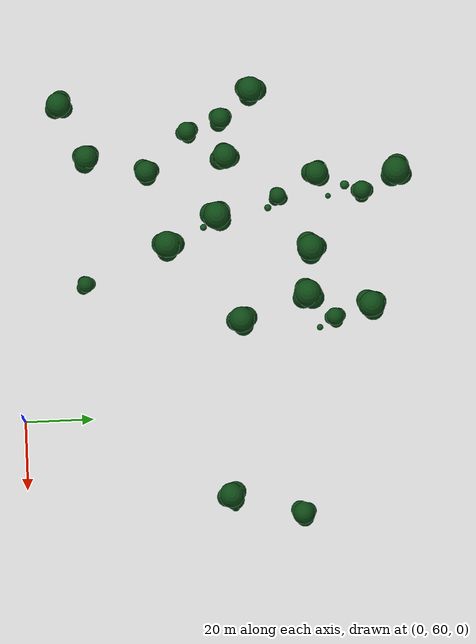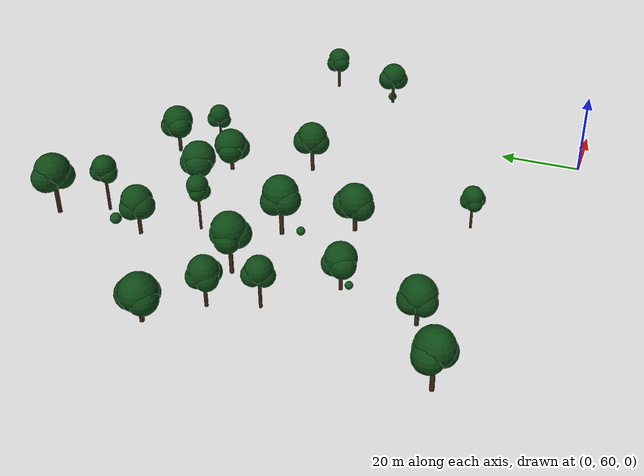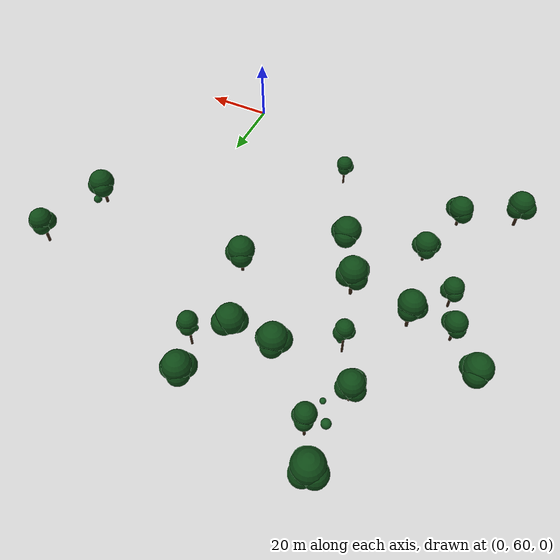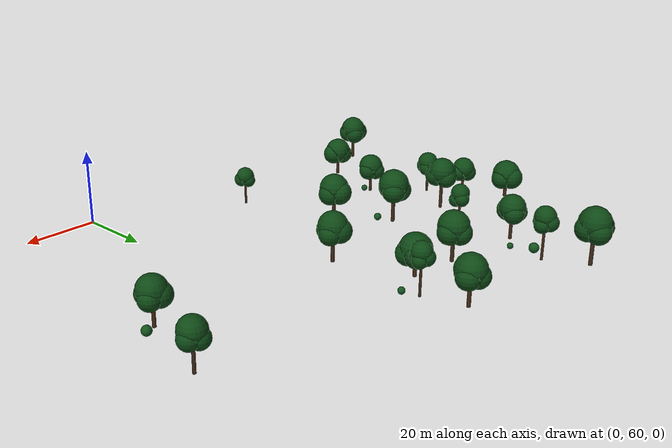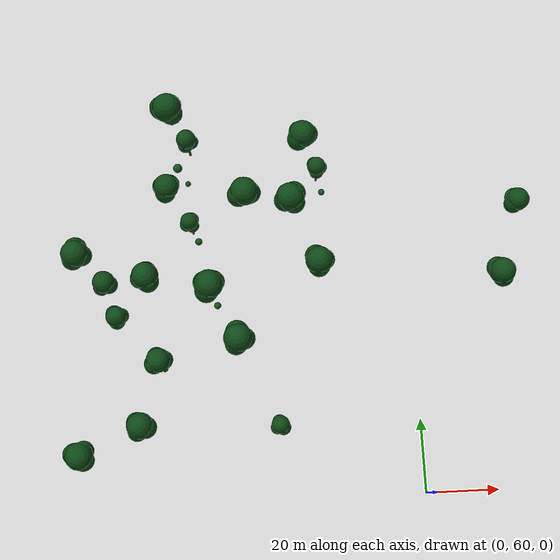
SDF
<sdf version="1.9">
 <world name="forest_monitoring">
  <model name="tree_1">
   <static>true</static>
   <pose>-49.59 103.68 0 0 0 1.43</pose>
   <link name="link">
    <visual name="trunk">
     <pose>0 0 4.39 0 0 0</pose>
     <geometry><cylinder><radius>0.49</radius><length>8.79</length></cylinder></geometry>
     <material>
      <ambient>0.18 0.11 0.06 1</ambient>
      <diffuse>0.24 0.15 0.08 1</diffuse>
      <specular>0.1 0.1 0.1 1</specular>
      <pbr><metal><roughness>0.9</roughness><metalness>0.0</metalness></metal></pbr>
     </material>
    </visual>
    <visual name="canopy_0">
     <pose>0.00 0.00 7.73 0 0 0</pose>
     <geometry><sphere><radius>4.06</radius></sphere></geometry>
     <material>
      <ambient>0.03 0.16 0.05 1</ambient>
      <diffuse>0.05 0.28 0.08 1</diffuse>
      <specular>0.1 0.1 0.1 1</specular>
      <pbr><metal><roughness>1.0</roughness><metalness>0.0</metalness></metal></pbr>
     </material>
    </visual>
    <visual name="canopy_1">
     <pose>1.70 0.49 6.86 0 0 0</pose>
     <geometry><sphere><radius>3.33</radius></sphere></geometry>
     <material>
      <ambient>0.03 0.16 0.05 1</ambient>
      <diffuse>0.05 0.28 0.08 1</diffuse>
      <specular>0.1 0.1 0.1 1</specular>
      <pbr><metal><roughness>1.0</roughness><metalness>0.0</metalness></metal></pbr>
     </material>
    </visual>
    <visual name="canopy_2">
     <pose>-1.54 0.32 6.68 0 0 0</pose>
     <geometry><sphere><radius>3.17</radius></sphere></geometry>
     <material>
      <ambient>0.03 0.16 0.05 1</ambient>
      <diffuse>0.05 0.28 0.08 1</diffuse>
      <specular>0.1 0.1 0.1 1</specular>
      <pbr><metal><roughness>1.0</roughness><metalness>0.0</metalness></metal></pbr>
     </material>
    </visual>
    <visual name="canopy_3">
     <pose>0.16 -1.70 6.50 0 0 0</pose>
     <geometry><sphere><radius>3.08</radius></sphere></geometry>
     <material>
      <ambient>0.03 0.16 0.05 1</ambient>
      <diffuse>0.05 0.28 0.08 1</diffuse>
      <specular>0.1 0.1 0.1 1</specular>
      <pbr><metal><roughness>1.0</roughness><metalness>0.0</metalness></metal></pbr>
     </material>
    </visual>
   </link>
  </model>
  <model name="tree_2">
   <static>true</static>
   <pose>-76.65 80.83 0 0 0 5.70</pose>
   <link name="link">
    <visual name="trunk">
     <pose>0 0 4.15 0 0 0</pose>
     <geometry><cylinder><radius>0.44</radius><length>8.31</length></cylinder></geometry>
     <material>
      <ambient>0.18 0.11 0.06 1</ambient>
      <diffuse>0.24 0.15 0.08 1</diffuse>
      <specular>0.1 0.1 0.1 1</specular>
      <pbr><metal><roughness>0.9</roughness><metalness>0.0</metalness></metal></pbr>
     </material>
    </visual>
    <visual name="canopy_0">
     <pose>0.00 0.00 7.31 0 0 0</pose>
     <geometry><sphere><radius>3.64</radius></sphere></geometry>
     <material>
      <ambient>0.03 0.16 0.05 1</ambient>
      <diffuse>0.05 0.28 0.08 1</diffuse>
      <specular>0.1 0.1 0.1 1</specular>
      <pbr><metal><roughness>1.0</roughness><metalness>0.0</metalness></metal></pbr>
     </material>
    </visual>
    <visual name="canopy_1">
     <pose>1.53 0.44 6.48 0 0 0</pose>
     <geometry><sphere><radius>2.98</radius></sphere></geometry>
     <material>
      <ambient>0.03 0.16 0.05 1</ambient>
      <diffuse>0.05 0.28 0.08 1</diffuse>
      <specular>0.1 0.1 0.1 1</specular>
      <pbr><metal><roughness>1.0</roughness><metalness>0.0</metalness></metal></pbr>
     </material>
    </visual>
    <visual name="canopy_2">
     <pose>-1.38 0.29 6.31 0 0 0</pose>
     <geometry><sphere><radius>2.84</radius></sphere></geometry>
     <material>
      <ambient>0.03 0.16 0.05 1</ambient>
      <diffuse>0.05 0.28 0.08 1</diffuse>
      <specular>0.1 0.1 0.1 1</specular>
      <pbr><metal><roughness>1.0</roughness><metalness>0.0</metalness></metal></pbr>
     </material>
    </visual>
    <visual name="canopy_3">
     <pose>0.15 -1.53 6.15 0 0 0</pose>
     <geometry><sphere><radius>2.76</radius></sphere></geometry>
     <material>
      <ambient>0.03 0.16 0.05 1</ambient>
      <diffuse>0.05 0.28 0.08 1</diffuse>
      <specular>0.1 0.1 0.1 1</specular>
      <pbr><metal><roughness>1.0</roughness><metalness>0.0</metalness></metal></pbr>
     </material>
    </visual>
   </link>
  </model>
  <model name="tree_3">
   <static>true</static>
   <pose>-57.14 118.49 0 0 0 4.03</pose>
   <link name="link">
    <visual name="trunk">
     <pose>0 0 6.04 0 0 0</pose>
     <geometry><cylinder><radius>0.49</radius><length>12.07</length></cylinder></geometry>
     <material>
      <ambient>0.18 0.11 0.06 1</ambient>
      <diffuse>0.24 0.15 0.08 1</diffuse>
      <specular>0.1 0.1 0.1 1</specular>
      <pbr><metal><roughness>0.9</roughness><metalness>0.0</metalness></metal></pbr>
     </material>
    </visual>
    <visual name="canopy_0">
     <pose>0.00 0.00 10.62 0 0 0</pose>
     <geometry><sphere><radius>4.08</radius></sphere></geometry>
     <material>
      <ambient>0.03 0.16 0.05 1</ambient>
      <diffuse>0.05 0.28 0.08 1</diffuse>
      <specular>0.1 0.1 0.1 1</specular>
      <pbr><metal><roughness>1.0</roughness><metalness>0.0</metalness></metal></pbr>
     </material>
    </visual>
    <visual name="canopy_1">
     <pose>1.71 0.49 9.42 0 0 0</pose>
     <geometry><sphere><radius>3.34</radius></sphere></geometry>
     <material>
      <ambient>0.03 0.16 0.05 1</ambient>
      <diffuse>0.05 0.28 0.08 1</diffuse>
      <specular>0.1 0.1 0.1 1</specular>
      <pbr><metal><roughness>1.0</roughness><metalness>0.0</metalness></metal></pbr>
     </material>
    </visual>
    <visual name="canopy_2">
     <pose>-1.55 0.33 9.18 0 0 0</pose>
     <geometry><sphere><radius>3.18</radius></sphere></geometry>
     <material>
      <ambient>0.03 0.16 0.05 1</ambient>
      <diffuse>0.05 0.28 0.08 1</diffuse>
      <specular>0.1 0.1 0.1 1</specular>
      <pbr><metal><roughness>1.0</roughness><metalness>0.0</metalness></metal></pbr>
     </material>
    </visual>
    <visual name="canopy_3">
     <pose>0.16 -1.71 8.93 0 0 0</pose>
     <geometry><sphere><radius>3.10</radius></sphere></geometry>
     <material>
      <ambient>0.03 0.16 0.05 1</ambient>
      <diffuse>0.05 0.28 0.08 1</diffuse>
      <specular>0.1 0.1 0.1 1</specular>
      <pbr><metal><roughness>1.0</roughness><metalness>0.0</metalness></metal></pbr>
     </material>
    </visual>
   </link>
  </model>
  <model name="tree_4">
   <static>true</static>
   <pose>-92.36 73.34 0 0 0 2.49</pose>
   <link name="link">
    <visual name="trunk">
     <pose>0 0 5.38 0 0 0</pose>
     <geometry><cylinder><radius>0.45</radius><length>10.75</length></cylinder></geometry>
     <material>
      <ambient>0.18 0.11 0.06 1</ambient>
      <diffuse>0.24 0.15 0.08 1</diffuse>
      <specular>0.1 0.1 0.1 1</specular>
      <pbr><metal><roughness>0.9</roughness><metalness>0.0</metalness></metal></pbr>
     </material>
    </visual>
    <visual name="canopy_0">
     <pose>0.00 0.00 9.46 0 0 0</pose>
     <geometry><sphere><radius>3.71</radius></sphere></geometry>
     <material>
      <ambient>0.03 0.16 0.05 1</ambient>
      <diffuse>0.05 0.28 0.08 1</diffuse>
      <specular>0.1 0.1 0.1 1</specular>
      <pbr><metal><roughness>1.0</roughness><metalness>0.0</metalness></metal></pbr>
     </material>
    </visual>
    <visual name="canopy_1">
     <pose>1.56 0.45 8.39 0 0 0</pose>
     <geometry><sphere><radius>3.04</radius></sphere></geometry>
     <material>
      <ambient>0.03 0.16 0.05 1</ambient>
      <diffuse>0.05 0.28 0.08 1</diffuse>
      <specular>0.1 0.1 0.1 1</specular>
      <pbr><metal><roughness>1.0</roughness><metalness>0.0</metalness></metal></pbr>
     </material>
    </visual>
    <visual name="canopy_2">
     <pose>-1.41 0.30 8.17 0 0 0</pose>
     <geometry><sphere><radius>2.89</radius></sphere></geometry>
     <material>
      <ambient>0.03 0.16 0.05 1</ambient>
      <diffuse>0.05 0.28 0.08 1</diffuse>
      <specular>0.1 0.1 0.1 1</specular>
      <pbr><metal><roughness>1.0</roughness><metalness>0.0</metalness></metal></pbr>
     </material>
    </visual>
    <visual name="canopy_3">
     <pose>0.15 -1.56 7.96 0 0 0</pose>
     <geometry><sphere><radius>2.82</radius></sphere></geometry>
     <material>
      <ambient>0.03 0.16 0.05 1</ambient>
      <diffuse>0.05 0.28 0.08 1</diffuse>
      <specular>0.1 0.1 0.1 1</specular>
      <pbr><metal><roughness>1.0</roughness><metalness>0.0</metalness></metal></pbr>
     </material>
    </visual>
   </link>
  </model>
  <model name="tree_6">
   <static>true</static>
   <pose>-71.57 98.38 0 0 0 3.49</pose>
   <link name="link">
    <visual name="trunk">
     <pose>0 0 4.31 0 0 0</pose>
     <geometry><cylinder><radius>0.41</radius><length>8.62</length></cylinder></geometry>
     <material>
      <ambient>0.18 0.11 0.06 1</ambient>
      <diffuse>0.24 0.15 0.08 1</diffuse>
      <specular>0.1 0.1 0.1 1</specular>
      <pbr><metal><roughness>0.9</roughness><metalness>0.0</metalness></metal></pbr>
     </material>
    </visual>
    <visual name="canopy_0">
     <pose>0.00 0.00 7.59 0 0 0</pose>
     <geometry><sphere><radius>3.40</radius></sphere></geometry>
     <material>
      <ambient>0.03 0.16 0.05 1</ambient>
      <diffuse>0.05 0.28 0.08 1</diffuse>
      <specular>0.1 0.1 0.1 1</specular>
      <pbr><metal><roughness>1.0</roughness><metalness>0.0</metalness></metal></pbr>
     </material>
    </visual>
    <visual name="canopy_1">
     <pose>1.43 0.41 6.73 0 0 0</pose>
     <geometry><sphere><radius>2.78</radius></sphere></geometry>
     <material>
      <ambient>0.03 0.16 0.05 1</ambient>
      <diffuse>0.05 0.28 0.08 1</diffuse>
      <specular>0.1 0.1 0.1 1</specular>
      <pbr><metal><roughness>1.0</roughness><metalness>0.0</metalness></metal></pbr>
     </material>
    </visual>
    <visual name="canopy_2">
     <pose>-1.29 0.27 6.55 0 0 0</pose>
     <geometry><sphere><radius>2.65</radius></sphere></geometry>
     <material>
      <ambient>0.03 0.16 0.05 1</ambient>
      <diffuse>0.05 0.28 0.08 1</diffuse>
      <specular>0.1 0.1 0.1 1</specular>
      <pbr><metal><roughness>1.0</roughness><metalness>0.0</metalness></metal></pbr>
     </material>
    </visual>
    <visual name="canopy_3">
     <pose>0.14 -1.43 6.38 0 0 0</pose>
     <geometry><sphere><radius>2.58</radius></sphere></geometry>
     <material>
      <ambient>0.03 0.16 0.05 1</ambient>
      <diffuse>0.05 0.28 0.08 1</diffuse>
      <specular>0.1 0.1 0.1 1</specular>
      <pbr><metal><roughness>1.0</roughness><metalness>0.0</metalness></metal></pbr>
     </material>
    </visual>
   </link>
  </model>
  <model name="tree_7">
   <static>true</static>
   <pose>-74.68 121.67 0 0 0 4.86</pose>
   <link name="link">
    <visual name="trunk">
     <pose>0 0 6.09 0 0 0</pose>
     <geometry><cylinder><radius>0.45</radius><length>12.18</length></cylinder></geometry>
     <material>
      <ambient>0.18 0.11 0.06 1</ambient>
      <diffuse>0.24 0.15 0.08 1</diffuse>
      <specular>0.1 0.1 0.1 1</specular>
      <pbr><metal><roughness>0.9</roughness><metalness>0.0</metalness></metal></pbr>
     </material>
    </visual>
    <visual name="canopy_0">
     <pose>0.00 0.00 10.72 0 0 0</pose>
     <geometry><sphere><radius>3.74</radius></sphere></geometry>
     <material>
      <ambient>0.03 0.16 0.05 1</ambient>
      <diffuse>0.05 0.28 0.08 1</diffuse>
      <specular>0.1 0.1 0.1 1</specular>
      <pbr><metal><roughness>1.0</roughness><metalness>0.0</metalness></metal></pbr>
     </material>
    </visual>
    <visual name="canopy_1">
     <pose>1.57 0.45 9.50 0 0 0</pose>
     <geometry><sphere><radius>3.06</radius></sphere></geometry>
     <material>
      <ambient>0.03 0.16 0.05 1</ambient>
      <diffuse>0.05 0.28 0.08 1</diffuse>
      <specular>0.1 0.1 0.1 1</specular>
      <pbr><metal><roughness>1.0</roughness><metalness>0.0</metalness></metal></pbr>
     </material>
    </visual>
    <visual name="canopy_2">
     <pose>-1.42 0.30 9.26 0 0 0</pose>
     <geometry><sphere><radius>2.91</radius></sphere></geometry>
     <material>
      <ambient>0.03 0.16 0.05 1</ambient>
      <diffuse>0.05 0.28 0.08 1</diffuse>
      <specular>0.1 0.1 0.1 1</specular>
      <pbr><metal><roughness>1.0</roughness><metalness>0.0</metalness></metal></pbr>
     </material>
    </visual>
    <visual name="canopy_3">
     <pose>0.15 -1.57 9.02 0 0 0</pose>
     <geometry><sphere><radius>2.84</radius></sphere></geometry>
     <material>
      <ambient>0.03 0.16 0.05 1</ambient>
      <diffuse>0.05 0.28 0.08 1</diffuse>
      <specular>0.1 0.1 0.1 1</specular>
      <pbr><metal><roughness>1.0</roughness><metalness>0.0</metalness></metal></pbr>
     </material>
    </visual>
   </link>
  </model>
  <model name="tree_10">
   <static>true</static>
   <pose>-38.74 79.47 0 0 0 5.22</pose>
   <link name="link">
    <visual name="trunk">
     <pose>0 0 4.69 0 0 0</pose>
     <geometry><cylinder><radius>0.29</radius><length>9.37</length></cylinder></geometry>
     <material>
      <ambient>0.18 0.11 0.06 1</ambient>
      <diffuse>0.24 0.15 0.08 1</diffuse>
      <specular>0.1 0.1 0.1 1</specular>
      <pbr><metal><roughness>0.9</roughness><metalness>0.0</metalness></metal></pbr>
     </material>
    </visual>
    <visual name="canopy_0">
     <pose>0.00 0.00 8.25 0 0 0</pose>
     <geometry><sphere><radius>2.45</radius></sphere></geometry>
     <material>
      <ambient>0.03 0.16 0.05 1</ambient>
      <diffuse>0.05 0.28 0.08 1</diffuse>
      <specular>0.1 0.1 0.1 1</specular>
      <pbr><metal><roughness>1.0</roughness><metalness>0.0</metalness></metal></pbr>
     </material>
    </visual>
    <visual name="canopy_1">
     <pose>1.03 0.29 7.31 0 0 0</pose>
     <geometry><sphere><radius>2.01</radius></sphere></geometry>
     <material>
      <ambient>0.03 0.16 0.05 1</ambient>
      <diffuse>0.05 0.28 0.08 1</diffuse>
      <specular>0.1 0.1 0.1 1</specular>
      <pbr><metal><roughness>1.0</roughness><metalness>0.0</metalness></metal></pbr>
     </material>
    </visual>
    <visual name="canopy_2">
     <pose>-0.93 0.20 7.12 0 0 0</pose>
     <geometry><sphere><radius>1.91</radius></sphere></geometry>
     <material>
      <ambient>0.03 0.16 0.05 1</ambient>
      <diffuse>0.05 0.28 0.08 1</diffuse>
      <specular>0.1 0.1 0.1 1</specular>
      <pbr><metal><roughness>1.0</roughness><metalness>0.0</metalness></metal></pbr>
     </material>
    </visual>
    <visual name="canopy_3">
     <pose>0.10 -1.03 6.93 0 0 0</pose>
     <geometry><sphere><radius>1.86</radius></sphere></geometry>
     <material>
      <ambient>0.03 0.16 0.05 1</ambient>
      <diffuse>0.05 0.28 0.08 1</diffuse>
      <specular>0.1 0.1 0.1 1</specular>
      <pbr><metal><roughness>1.0</roughness><metalness>0.0</metalness></metal></pbr>
     </material>
    </visual>
   </link>
  </model>
  <model name="tree_12">
   <static>true</static>
   <pose>-68.85 148.26 0 0 0 4.20</pose>
   <link name="link">
    <visual name="trunk">
     <pose>0 0 4.89 0 0 0</pose>
     <geometry><cylinder><radius>0.43</radius><length>9.79</length></cylinder></geometry>
     <material>
      <ambient>0.18 0.11 0.06 1</ambient>
      <diffuse>0.24 0.15 0.08 1</diffuse>
      <specular>0.1 0.1 0.1 1</specular>
      <pbr><metal><roughness>0.9</roughness><metalness>0.0</metalness></metal></pbr>
     </material>
    </visual>
    <visual name="canopy_0">
     <pose>0.00 0.00 8.61 0 0 0</pose>
     <geometry><sphere><radius>3.56</radius></sphere></geometry>
     <material>
      <ambient>0.03 0.16 0.05 1</ambient>
      <diffuse>0.05 0.28 0.08 1</diffuse>
      <specular>0.1 0.1 0.1 1</specular>
      <pbr><metal><roughness>1.0</roughness><metalness>0.0</metalness></metal></pbr>
     </material>
    </visual>
    <visual name="canopy_1">
     <pose>1.50 0.43 7.64 0 0 0</pose>
     <geometry><sphere><radius>2.92</radius></sphere></geometry>
     <material>
      <ambient>0.03 0.16 0.05 1</ambient>
      <diffuse>0.05 0.28 0.08 1</diffuse>
      <specular>0.1 0.1 0.1 1</specular>
      <pbr><metal><roughness>1.0</roughness><metalness>0.0</metalness></metal></pbr>
     </material>
    </visual>
    <visual name="canopy_2">
     <pose>-1.35 0.29 7.44 0 0 0</pose>
     <geometry><sphere><radius>2.78</radius></sphere></geometry>
     <material>
      <ambient>0.03 0.16 0.05 1</ambient>
      <diffuse>0.05 0.28 0.08 1</diffuse>
      <specular>0.1 0.1 0.1 1</specular>
      <pbr><metal><roughness>1.0</roughness><metalness>0.0</metalness></metal></pbr>
     </material>
    </visual>
    <visual name="canopy_3">
     <pose>0.14 -1.50 7.24 0 0 0</pose>
     <geometry><sphere><radius>2.71</radius></sphere></geometry>
     <material>
      <ambient>0.03 0.16 0.05 1</ambient>
      <diffuse>0.05 0.28 0.08 1</diffuse>
      <specular>0.1 0.1 0.1 1</specular>
      <pbr><metal><roughness>1.0</roughness><metalness>0.0</metalness></metal></pbr>
     </material>
    </visual>
   </link>
  </model>
  <model name="tree_13">
   <static>true</static>
   <pose>-68.14 171.48 0 0 0 2.55</pose>
   <link name="link">
    <visual name="trunk">
     <pose>0 0 6.32 0 0 0</pose>
     <geometry><cylinder><radius>0.50</radius><length>12.63</length></cylinder></geometry>
     <material>
      <ambient>0.18 0.11 0.06 1</ambient>
      <diffuse>0.24 0.15 0.08 1</diffuse>
      <specular>0.1 0.1 0.1 1</specular>
      <pbr><metal><roughness>0.9</roughness><metalness>0.0</metalness></metal></pbr>
     </material>
    </visual>
    <visual name="canopy_0">
     <pose>0.00 0.00 11.12 0 0 0</pose>
     <geometry><sphere><radius>4.17</radius></sphere></geometry>
     <material>
      <ambient>0.03 0.16 0.05 1</ambient>
      <diffuse>0.05 0.28 0.08 1</diffuse>
      <specular>0.1 0.1 0.1 1</specular>
      <pbr><metal><roughness>1.0</roughness><metalness>0.0</metalness></metal></pbr>
     </material>
    </visual>
    <visual name="canopy_1">
     <pose>1.75 0.50 9.85 0 0 0</pose>
     <geometry><sphere><radius>3.42</radius></sphere></geometry>
     <material>
      <ambient>0.03 0.16 0.05 1</ambient>
      <diffuse>0.05 0.28 0.08 1</diffuse>
      <specular>0.1 0.1 0.1 1</specular>
      <pbr><metal><roughness>1.0</roughness><metalness>0.0</metalness></metal></pbr>
     </material>
    </visual>
    <visual name="canopy_2">
     <pose>-1.58 0.33 9.60 0 0 0</pose>
     <geometry><sphere><radius>3.25</radius></sphere></geometry>
     <material>
      <ambient>0.03 0.16 0.05 1</ambient>
      <diffuse>0.05 0.28 0.08 1</diffuse>
      <specular>0.1 0.1 0.1 1</specular>
      <pbr><metal><roughness>1.0</roughness><metalness>0.0</metalness></metal></pbr>
     </material>
    </visual>
    <visual name="canopy_3">
     <pose>0.17 -1.75 9.35 0 0 0</pose>
     <geometry><sphere><radius>3.17</radius></sphere></geometry>
     <material>
      <ambient>0.03 0.16 0.05 1</ambient>
      <diffuse>0.05 0.28 0.08 1</diffuse>
      <specular>0.1 0.1 0.1 1</specular>
      <pbr><metal><roughness>1.0</roughness><metalness>0.0</metalness></metal></pbr>
     </material>
    </visual>
   </link>
  </model>
  <model name="tree_14">
   <static>true</static>
   <pose>-95.13 129.93 0 0 0 1.29</pose>
   <link name="link">
    <visual name="trunk">
     <pose>0 0 3.83 0 0 0</pose>
     <geometry><cylinder><radius>0.47</radius><length>7.67</length></cylinder></geometry>
     <material>
      <ambient>0.18 0.11 0.06 1</ambient>
      <diffuse>0.24 0.15 0.08 1</diffuse>
      <specular>0.1 0.1 0.1 1</specular>
      <pbr><metal><roughness>0.9</roughness><metalness>0.0</metalness></metal></pbr>
     </material>
    </visual>
    <visual name="canopy_0">
     <pose>0.00 0.00 6.75 0 0 0</pose>
     <geometry><sphere><radius>3.94</radius></sphere></geometry>
     <material>
      <ambient>0.03 0.16 0.05 1</ambient>
      <diffuse>0.05 0.28 0.08 1</diffuse>
      <specular>0.1 0.1 0.1 1</specular>
      <pbr><metal><roughness>1.0</roughness><metalness>0.0</metalness></metal></pbr>
     </material>
    </visual>
    <visual name="canopy_1">
     <pose>1.66 0.47 5.98 0 0 0</pose>
     <geometry><sphere><radius>3.23</radius></sphere></geometry>
     <material>
      <ambient>0.03 0.16 0.05 1</ambient>
      <diffuse>0.05 0.28 0.08 1</diffuse>
      <specular>0.1 0.1 0.1 1</specular>
      <pbr><metal><roughness>1.0</roughness><metalness>0.0</metalness></metal></pbr>
     </material>
    </visual>
    <visual name="canopy_2">
     <pose>-1.50 0.32 5.83 0 0 0</pose>
     <geometry><sphere><radius>3.08</radius></sphere></geometry>
     <material>
      <ambient>0.03 0.16 0.05 1</ambient>
      <diffuse>0.05 0.28 0.08 1</diffuse>
      <specular>0.1 0.1 0.1 1</specular>
      <pbr><metal><roughness>1.0</roughness><metalness>0.0</metalness></metal></pbr>
     </material>
    </visual>
    <visual name="canopy_3">
     <pose>0.16 -1.66 5.67 0 0 0</pose>
     <geometry><sphere><radius>3.00</radius></sphere></geometry>
     <material>
      <ambient>0.03 0.16 0.05 1</ambient>
      <diffuse>0.05 0.28 0.08 1</diffuse>
      <specular>0.1 0.1 0.1 1</specular>
      <pbr><metal><roughness>1.0</roughness><metalness>0.0</metalness></metal></pbr>
     </material>
    </visual>
   </link>
  </model>
  <model name="tree_15">
   <static>true</static>
   <pose>-25.72 151.57 0 0 0 1.77</pose>
   <link name="link">
    <visual name="trunk">
     <pose>0 0 6.37 0 0 0</pose>
     <geometry><cylinder><radius>0.31</radius><length>12.74</length></cylinder></geometry>
     <material>
      <ambient>0.18 0.11 0.06 1</ambient>
      <diffuse>0.24 0.15 0.08 1</diffuse>
      <specular>0.1 0.1 0.1 1</specular>
      <pbr><metal><roughness>0.9</roughness><metalness>0.0</metalness></metal></pbr>
     </material>
    </visual>
    <visual name="canopy_0">
     <pose>0.00 0.00 11.21 0 0 0</pose>
     <geometry><sphere><radius>2.62</radius></sphere></geometry>
     <material>
      <ambient>0.03 0.16 0.05 1</ambient>
      <diffuse>0.05 0.28 0.08 1</diffuse>
      <specular>0.1 0.1 0.1 1</specular>
      <pbr><metal><roughness>1.0</roughness><metalness>0.0</metalness></metal></pbr>
     </material>
    </visual>
    <visual name="canopy_1">
     <pose>1.10 0.31 9.94 0 0 0</pose>
     <geometry><sphere><radius>2.15</radius></sphere></geometry>
     <material>
      <ambient>0.03 0.16 0.05 1</ambient>
      <diffuse>0.05 0.28 0.08 1</diffuse>
      <specular>0.1 0.1 0.1 1</specular>
      <pbr><metal><roughness>1.0</roughness><metalness>0.0</metalness></metal></pbr>
     </material>
    </visual>
    <visual name="canopy_2">
     <pose>-1.00 0.21 9.68 0 0 0</pose>
     <geometry><sphere><radius>2.04</radius></sphere></geometry>
     <material>
      <ambient>0.03 0.16 0.05 1</ambient>
      <diffuse>0.05 0.28 0.08 1</diffuse>
      <specular>0.1 0.1 0.1 1</specular>
      <pbr><metal><roughness>1.0</roughness><metalness>0.0</metalness></metal></pbr>
     </material>
    </visual>
    <visual name="canopy_3">
     <pose>0.10 -1.10 9.43 0 0 0</pose>
     <geometry><sphere><radius>1.99</radius></sphere></geometry>
     <material>
      <ambient>0.03 0.16 0.05 1</ambient>
      <diffuse>0.05 0.28 0.08 1</diffuse>
      <specular>0.1 0.1 0.1 1</specular>
      <pbr><metal><roughness>1.0</roughness><metalness>0.0</metalness></metal></pbr>
     </material>
    </visual>
   </link>
  </model>
  <model name="tree_16">
   <static>true</static>
   <pose>-82.87 110.77 0 0 0 1.87</pose>
   <link name="link">
    <visual name="trunk">
     <pose>0 0 5.06 0 0 0</pose>
     <geometry><cylinder><radius>0.34</radius><length>10.11</length></cylinder></geometry>
     <material>
      <ambient>0.18 0.11 0.06 1</ambient>
      <diffuse>0.24 0.15 0.08 1</diffuse>
      <specular>0.1 0.1 0.1 1</specular>
      <pbr><metal><roughness>0.9</roughness><metalness>0.0</metalness></metal></pbr>
     </material>
    </visual>
    <visual name="canopy_0">
     <pose>0.00 0.00 8.90 0 0 0</pose>
     <geometry><sphere><radius>2.86</radius></sphere></geometry>
     <material>
      <ambient>0.03 0.16 0.05 1</ambient>
      <diffuse>0.05 0.28 0.08 1</diffuse>
      <specular>0.1 0.1 0.1 1</specular>
      <pbr><metal><roughness>1.0</roughness><metalness>0.0</metalness></metal></pbr>
     </material>
    </visual>
    <visual name="canopy_1">
     <pose>1.20 0.34 7.89 0 0 0</pose>
     <geometry><sphere><radius>2.34</radius></sphere></geometry>
     <material>
      <ambient>0.03 0.16 0.05 1</ambient>
      <diffuse>0.05 0.28 0.08 1</diffuse>
      <specular>0.1 0.1 0.1 1</specular>
      <pbr><metal><roughness>1.0</roughness><metalness>0.0</metalness></metal></pbr>
     </material>
    </visual>
    <visual name="canopy_2">
     <pose>-1.09 0.23 7.69 0 0 0</pose>
     <geometry><sphere><radius>2.23</radius></sphere></geometry>
     <material>
      <ambient>0.03 0.16 0.05 1</ambient>
      <diffuse>0.05 0.28 0.08 1</diffuse>
      <specular>0.1 0.1 0.1 1</specular>
      <pbr><metal><roughness>1.0</roughness><metalness>0.0</metalness></metal></pbr>
     </material>
    </visual>
    <visual name="canopy_3">
     <pose>0.11 -1.20 7.48 0 0 0</pose>
     <geometry><sphere><radius>2.17</radius></sphere></geometry>
     <material>
      <ambient>0.03 0.16 0.05 1</ambient>
      <diffuse>0.05 0.28 0.08 1</diffuse>
      <specular>0.1 0.1 0.1 1</specular>
      <pbr><metal><roughness>1.0</roughness><metalness>0.0</metalness></metal></pbr>
     </material>
    </visual>
   </link>
  </model>
  <model name="tree_17">
   <static>true</static>
   <pose>-26.20 124.40 0 0 0 1.78</pose>
   <link name="link">
    <visual name="trunk">
     <pose>0 0 5.37 0 0 0</pose>
     <geometry><cylinder><radius>0.46</radius><length>10.75</length></cylinder></geometry>
     <material>
      <ambient>0.18 0.11 0.06 1</ambient>
      <diffuse>0.24 0.15 0.08 1</diffuse>
      <specular>0.1 0.1 0.1 1</specular>
      <pbr><metal><roughness>0.9</roughness><metalness>0.0</metalness></metal></pbr>
     </material>
    </visual>
    <visual name="canopy_0">
     <pose>0.00 0.00 9.46 0 0 0</pose>
     <geometry><sphere><radius>3.87</radius></sphere></geometry>
     <material>
      <ambient>0.03 0.16 0.05 1</ambient>
      <diffuse>0.05 0.28 0.08 1</diffuse>
      <specular>0.1 0.1 0.1 1</specular>
      <pbr><metal><roughness>1.0</roughness><metalness>0.0</metalness></metal></pbr>
     </material>
    </visual>
    <visual name="canopy_1">
     <pose>1.62 0.46 8.38 0 0 0</pose>
     <geometry><sphere><radius>3.17</radius></sphere></geometry>
     <material>
      <ambient>0.03 0.16 0.05 1</ambient>
      <diffuse>0.05 0.28 0.08 1</diffuse>
      <specular>0.1 0.1 0.1 1</specular>
      <pbr><metal><roughness>1.0</roughness><metalness>0.0</metalness></metal></pbr>
     </material>
    </visual>
    <visual name="canopy_2">
     <pose>-1.47 0.31 8.17 0 0 0</pose>
     <geometry><sphere><radius>3.02</radius></sphere></geometry>
     <material>
      <ambient>0.03 0.16 0.05 1</ambient>
      <diffuse>0.05 0.28 0.08 1</diffuse>
      <specular>0.1 0.1 0.1 1</specular>
      <pbr><metal><roughness>1.0</roughness><metalness>0.0</metalness></metal></pbr>
     </material>
    </visual>
    <visual name="canopy_3">
     <pose>0.15 -1.62 7.95 0 0 0</pose>
     <geometry><sphere><radius>2.94</radius></sphere></geometry>
     <material>
      <ambient>0.03 0.16 0.05 1</ambient>
      <diffuse>0.05 0.28 0.08 1</diffuse>
      <specular>0.1 0.1 0.1 1</specular>
      <pbr><metal><roughness>1.0</roughness><metalness>0.0</metalness></metal></pbr>
     </material>
    </visual>
   </link>
  </model>
  <model name="tree_18">
   <static>true</static>
   <pose>-62.66 161.18 0 0 0 1.48</pose>
   <link name="link">
    <visual name="trunk">
     <pose>0 0 6.50 0 0 0</pose>
     <geometry><cylinder><radius>0.34</radius><length>13.00</length></cylinder></geometry>
     <material>
      <ambient>0.18 0.11 0.06 1</ambient>
      <diffuse>0.24 0.15 0.08 1</diffuse>
      <specular>0.1 0.1 0.1 1</specular>
      <pbr><metal><roughness>0.9</roughness><metalness>0.0</metalness></metal></pbr>
     </material>
    </visual>
    <visual name="canopy_0">
     <pose>0.00 0.00 11.44 0 0 0</pose>
     <geometry><sphere><radius>2.80</radius></sphere></geometry>
     <material>
      <ambient>0.03 0.16 0.05 1</ambient>
      <diffuse>0.05 0.28 0.08 1</diffuse>
      <specular>0.1 0.1 0.1 1</specular>
      <pbr><metal><roughness>1.0</roughness><metalness>0.0</metalness></metal></pbr>
     </material>
    </visual>
    <visual name="canopy_1">
     <pose>1.18 0.34 10.14 0 0 0</pose>
     <geometry><sphere><radius>2.30</radius></sphere></geometry>
     <material>
      <ambient>0.03 0.16 0.05 1</ambient>
      <diffuse>0.05 0.28 0.08 1</diffuse>
      <specular>0.1 0.1 0.1 1</specular>
      <pbr><metal><roughness>1.0</roughness><metalness>0.0</metalness></metal></pbr>
     </material>
    </visual>
    <visual name="canopy_2">
     <pose>-1.06 0.22 9.88 0 0 0</pose>
     <geometry><sphere><radius>2.18</radius></sphere></geometry>
     <material>
      <ambient>0.03 0.16 0.05 1</ambient>
      <diffuse>0.05 0.28 0.08 1</diffuse>
      <specular>0.1 0.1 0.1 1</specular>
      <pbr><metal><roughness>1.0</roughness><metalness>0.0</metalness></metal></pbr>
     </material>
    </visual>
    <visual name="canopy_3">
     <pose>0.11 -1.18 9.62 0 0 0</pose>
     <geometry><sphere><radius>2.13</radius></sphere></geometry>
     <material>
      <ambient>0.03 0.16 0.05 1</ambient>
      <diffuse>0.05 0.28 0.08 1</diffuse>
      <specular>0.1 0.1 0.1 1</specular>
      <pbr><metal><roughness>1.0</roughness><metalness>0.0</metalness></metal></pbr>
     </material>
    </visual>
   </link>
  </model>
  <model name="tree_19">
   <static>true</static>
   <pose>-33.52 144.14 0 0 0 0.60</pose>
   <link name="link">
    <visual name="trunk">
     <pose>0 0 4.01 0 0 0</pose>
     <geometry><cylinder><radius>0.50</radius><length>8.03</length></cylinder></geometry>
     <material>
      <ambient>0.18 0.11 0.06 1</ambient>
      <diffuse>0.24 0.15 0.08 1</diffuse>
      <specular>0.1 0.1 0.1 1</specular>
      <pbr><metal><roughness>0.9</roughness><metalness>0.0</metalness></metal></pbr>
     </material>
    </visual>
    <visual name="canopy_0">
     <pose>0.00 0.00 7.06 0 0 0</pose>
     <geometry><sphere><radius>4.15</radius></sphere></geometry>
     <material>
      <ambient>0.03 0.16 0.05 1</ambient>
      <diffuse>0.05 0.28 0.08 1</diffuse>
      <specular>0.1 0.1 0.1 1</specular>
      <pbr><metal><roughness>1.0</roughness><metalness>0.0</metalness></metal></pbr>
     </material>
    </visual>
    <visual name="canopy_1">
     <pose>1.74 0.50 6.26 0 0 0</pose>
     <geometry><sphere><radius>3.40</radius></sphere></geometry>
     <material>
      <ambient>0.03 0.16 0.05 1</ambient>
      <diffuse>0.05 0.28 0.08 1</diffuse>
      <specular>0.1 0.1 0.1 1</specular>
      <pbr><metal><roughness>1.0</roughness><metalness>0.0</metalness></metal></pbr>
     </material>
    </visual>
    <visual name="canopy_2">
     <pose>-1.58 0.33 6.10 0 0 0</pose>
     <geometry><sphere><radius>3.23</radius></sphere></geometry>
     <material>
      <ambient>0.03 0.16 0.05 1</ambient>
      <diffuse>0.05 0.28 0.08 1</diffuse>
      <specular>0.1 0.1 0.1 1</specular>
      <pbr><metal><roughness>1.0</roughness><metalness>0.0</metalness></metal></pbr>
     </material>
    </visual>
    <visual name="canopy_3">
     <pose>0.17 -1.74 5.94 0 0 0</pose>
     <geometry><sphere><radius>3.15</radius></sphere></geometry>
     <material>
      <ambient>0.03 0.16 0.05 1</ambient>
      <diffuse>0.05 0.28 0.08 1</diffuse>
      <specular>0.1 0.1 0.1 1</specular>
      <pbr><metal><roughness>1.0</roughness><metalness>0.0</metalness></metal></pbr>
     </material>
    </visual>
   </link>
  </model>
  <model name="tree_20">
   <static>true</static>
   <pose>-46.63 145.59 0 0 0 3.30</pose>
   <link name="link">
    <visual name="trunk">
     <pose>0 0 5.35 0 0 0</pose>
     <geometry><cylinder><radius>0.49</radius><length>10.69</length></cylinder></geometry>
     <material>
      <ambient>0.18 0.11 0.06 1</ambient>
      <diffuse>0.24 0.15 0.08 1</diffuse>
      <specular>0.1 0.1 0.1 1</specular>
      <pbr><metal><roughness>0.9</roughness><metalness>0.0</metalness></metal></pbr>
     </material>
    </visual>
    <visual name="canopy_0">
     <pose>0.00 0.00 9.41 0 0 0</pose>
     <geometry><sphere><radius>4.06</radius></sphere></geometry>
     <material>
      <ambient>0.03 0.16 0.05 1</ambient>
      <diffuse>0.05 0.28 0.08 1</diffuse>
      <specular>0.1 0.1 0.1 1</specular>
      <pbr><metal><roughness>1.0</roughness><metalness>0.0</metalness></metal></pbr>
     </material>
    </visual>
    <visual name="canopy_1">
     <pose>1.70 0.49 8.34 0 0 0</pose>
     <geometry><sphere><radius>3.33</radius></sphere></geometry>
     <material>
      <ambient>0.03 0.16 0.05 1</ambient>
      <diffuse>0.05 0.28 0.08 1</diffuse>
      <specular>0.1 0.1 0.1 1</specular>
      <pbr><metal><roughness>1.0</roughness><metalness>0.0</metalness></metal></pbr>
     </material>
    </visual>
    <visual name="canopy_2">
     <pose>-1.54 0.32 8.13 0 0 0</pose>
     <geometry><sphere><radius>3.16</radius></sphere></geometry>
     <material>
      <ambient>0.03 0.16 0.05 1</ambient>
      <diffuse>0.05 0.28 0.08 1</diffuse>
      <specular>0.1 0.1 0.1 1</specular>
      <pbr><metal><roughness>1.0</roughness><metalness>0.0</metalness></metal></pbr>
     </material>
    </visual>
    <visual name="canopy_3">
     <pose>0.16 -1.70 7.91 0 0 0</pose>
     <geometry><sphere><radius>3.08</radius></sphere></geometry>
     <material>
      <ambient>0.03 0.16 0.05 1</ambient>
      <diffuse>0.05 0.28 0.08 1</diffuse>
      <specular>0.1 0.1 0.1 1</specular>
      <pbr><metal><roughness>1.0</roughness><metalness>0.0</metalness></metal></pbr>
     </material>
    </visual>
   </link>
  </model>
  <model name="tree_21">
   <static>true</static>
   <pose>-62.10 136.56 0 0 0 0.69</pose>
   <link name="link">
    <visual name="trunk">
     <pose>0 0 6.48 0 0 0</pose>
     <geometry><cylinder><radius>0.29</radius><length>12.97</length></cylinder></geometry>
     <material>
      <ambient>0.18 0.11 0.06 1</ambient>
      <diffuse>0.24 0.15 0.08 1</diffuse>
      <specular>0.1 0.1 0.1 1</specular>
      <pbr><metal><roughness>0.9</roughness><metalness>0.0</metalness></metal></pbr>
     </material>
    </visual>
    <visual name="canopy_0">
     <pose>0.00 0.00 11.41 0 0 0</pose>
     <geometry><sphere><radius>2.45</radius></sphere></geometry>
     <material>
      <ambient>0.03 0.16 0.05 1</ambient>
      <diffuse>0.05 0.28 0.08 1</diffuse>
      <specular>0.1 0.1 0.1 1</specular>
      <pbr><metal><roughness>1.0</roughness><metalness>0.0</metalness></metal></pbr>
     </material>
    </visual>
    <visual name="canopy_1">
     <pose>1.03 0.29 10.12 0 0 0</pose>
     <geometry><sphere><radius>2.01</radius></sphere></geometry>
     <material>
      <ambient>0.03 0.16 0.05 1</ambient>
      <diffuse>0.05 0.28 0.08 1</diffuse>
      <specular>0.1 0.1 0.1 1</specular>
      <pbr><metal><roughness>1.0</roughness><metalness>0.0</metalness></metal></pbr>
     </material>
    </visual>
    <visual name="canopy_2">
     <pose>-0.93 0.20 9.86 0 0 0</pose>
     <geometry><sphere><radius>1.91</radius></sphere></geometry>
     <material>
      <ambient>0.03 0.16 0.05 1</ambient>
      <diffuse>0.05 0.28 0.08 1</diffuse>
      <specular>0.1 0.1 0.1 1</specular>
      <pbr><metal><roughness>1.0</roughness><metalness>0.0</metalness></metal></pbr>
     </material>
    </visual>
    <visual name="canopy_3">
     <pose>0.10 -1.03 9.60 0 0 0</pose>
     <geometry><sphere><radius>1.87</radius></sphere></geometry>
     <material>
      <ambient>0.03 0.16 0.05 1</ambient>
      <diffuse>0.05 0.28 0.08 1</diffuse>
      <specular>0.1 0.1 0.1 1</specular>
      <pbr><metal><roughness>1.0</roughness><metalness>0.0</metalness></metal></pbr>
     </material>
    </visual>
   </link>
  </model>
  <model name="tree_22">
   <static>true</static>
   <pose>-86.51 120.84 0 0 0 5.57</pose>
   <link name="link">
    <visual name="trunk">
     <pose>0 0 4.80 0 0 0</pose>
     <geometry><cylinder><radius>0.37</radius><length>9.59</length></cylinder></geometry>
     <material>
      <ambient>0.18 0.11 0.06 1</ambient>
      <diffuse>0.24 0.15 0.08 1</diffuse>
      <specular>0.1 0.1 0.1 1</specular>
      <pbr><metal><roughness>0.9</roughness><metalness>0.0</metalness></metal></pbr>
     </material>
    </visual>
    <visual name="canopy_0">
     <pose>0.00 0.00 8.44 0 0 0</pose>
     <geometry><sphere><radius>3.12</radius></sphere></geometry>
     <material>
      <ambient>0.03 0.16 0.05 1</ambient>
      <diffuse>0.05 0.28 0.08 1</diffuse>
      <specular>0.1 0.1 0.1 1</specular>
      <pbr><metal><roughness>1.0</roughness><metalness>0.0</metalness></metal></pbr>
     </material>
    </visual>
    <visual name="canopy_1">
     <pose>1.31 0.37 7.48 0 0 0</pose>
     <geometry><sphere><radius>2.55</radius></sphere></geometry>
     <material>
      <ambient>0.03 0.16 0.05 1</ambient>
      <diffuse>0.05 0.28 0.08 1</diffuse>
      <specular>0.1 0.1 0.1 1</specular>
      <pbr><metal><roughness>1.0</roughness><metalness>0.0</metalness></metal></pbr>
     </material>
    </visual>
    <visual name="canopy_2">
     <pose>-1.18 0.25 7.29 0 0 0</pose>
     <geometry><sphere><radius>2.43</radius></sphere></geometry>
     <material>
      <ambient>0.03 0.16 0.05 1</ambient>
      <diffuse>0.05 0.28 0.08 1</diffuse>
      <specular>0.1 0.1 0.1 1</specular>
      <pbr><metal><roughness>1.0</roughness><metalness>0.0</metalness></metal></pbr>
     </material>
    </visual>
    <visual name="canopy_3">
     <pose>0.12 -1.31 7.10 0 0 0</pose>
     <geometry><sphere><radius>2.37</radius></sphere></geometry>
     <material>
      <ambient>0.03 0.16 0.05 1</ambient>
      <diffuse>0.05 0.28 0.08 1</diffuse>
      <specular>0.1 0.1 0.1 1</specular>
      <pbr><metal><roughness>1.0</roughness><metalness>0.0</metalness></metal></pbr>
     </material>
    </visual>
   </link>
  </model>
  <model name="tree_23">
   <static>true</static>
   <pose>-29.21 162.51 0 0 0 3.63</pose>
   <link name="link">
    <visual name="trunk">
     <pose>0 0 5.19 0 0 0</pose>
     <geometry><cylinder><radius>0.47</radius><length>10.39</length></cylinder></geometry>
     <material>
      <ambient>0.18 0.11 0.06 1</ambient>
      <diffuse>0.24 0.15 0.08 1</diffuse>
      <specular>0.1 0.1 0.1 1</specular>
      <pbr><metal><roughness>0.9</roughness><metalness>0.0</metalness></metal></pbr>
     </material>
    </visual>
    <visual name="canopy_0">
     <pose>0.00 0.00 9.14 0 0 0</pose>
     <geometry><sphere><radius>3.94</radius></sphere></geometry>
     <material>
      <ambient>0.03 0.16 0.05 1</ambient>
      <diffuse>0.05 0.28 0.08 1</diffuse>
      <specular>0.1 0.1 0.1 1</specular>
      <pbr><metal><roughness>1.0</roughness><metalness>0.0</metalness></metal></pbr>
     </material>
    </visual>
    <visual name="canopy_1">
     <pose>1.66 0.47 8.10 0 0 0</pose>
     <geometry><sphere><radius>3.23</radius></sphere></geometry>
     <material>
      <ambient>0.03 0.16 0.05 1</ambient>
      <diffuse>0.05 0.28 0.08 1</diffuse>
      <specular>0.1 0.1 0.1 1</specular>
      <pbr><metal><roughness>1.0</roughness><metalness>0.0</metalness></metal></pbr>
     </material>
    </visual>
    <visual name="canopy_2">
     <pose>-1.50 0.32 7.90 0 0 0</pose>
     <geometry><sphere><radius>3.07</radius></sphere></geometry>
     <material>
      <ambient>0.03 0.16 0.05 1</ambient>
      <diffuse>0.05 0.28 0.08 1</diffuse>
      <specular>0.1 0.1 0.1 1</specular>
      <pbr><metal><roughness>1.0</roughness><metalness>0.0</metalness></metal></pbr>
     </material>
    </visual>
    <visual name="canopy_3">
     <pose>0.16 -1.66 7.69 0 0 0</pose>
     <geometry><sphere><radius>2.99</radius></sphere></geometry>
     <material>
      <ambient>0.03 0.16 0.05 1</ambient>
      <diffuse>0.05 0.28 0.08 1</diffuse>
      <specular>0.1 0.1 0.1 1</specular>
      <pbr><metal><roughness>1.0</roughness><metalness>0.0</metalness></metal></pbr>
     </material>
    </visual>
   </link>
  </model>
  <model name="tree_27">
   <static>true</static>
   <pose>30.87 139.85 0 0 0 3.59</pose>
   <link name="link">
    <visual name="trunk">
     <pose>0 0 5.41 0 0 0</pose>
     <geometry><cylinder><radius>0.39</radius><length>10.83</length></cylinder></geometry>
     <material>
      <ambient>0.18 0.11 0.06 1</ambient>
      <diffuse>0.24 0.15 0.08 1</diffuse>
      <specular>0.1 0.1 0.1 1</specular>
      <pbr><metal><roughness>0.9</roughness><metalness>0.0</metalness></metal></pbr>
     </material>
    </visual>
    <visual name="canopy_0">
     <pose>0.00 0.00 9.53 0 0 0</pose>
     <geometry><sphere><radius>3.28</radius></sphere></geometry>
     <material>
      <ambient>0.03 0.16 0.05 1</ambient>
      <diffuse>0.05 0.28 0.08 1</diffuse>
      <specular>0.1 0.1 0.1 1</specular>
      <pbr><metal><roughness>1.0</roughness><metalness>0.0</metalness></metal></pbr>
     </material>
    </visual>
    <visual name="canopy_1">
     <pose>1.38 0.39 8.44 0 0 0</pose>
     <geometry><sphere><radius>2.69</radius></sphere></geometry>
     <material>
      <ambient>0.03 0.16 0.05 1</ambient>
      <diffuse>0.05 0.28 0.08 1</diffuse>
      <specular>0.1 0.1 0.1 1</specular>
      <pbr><metal><roughness>1.0</roughness><metalness>0.0</metalness></metal></pbr>
     </material>
    </visual>
    <visual name="canopy_2">
     <pose>-1.25 0.26 8.23 0 0 0</pose>
     <geometry><sphere><radius>2.56</radius></sphere></geometry>
     <material>
      <ambient>0.03 0.16 0.05 1</ambient>
      <diffuse>0.05 0.28 0.08 1</diffuse>
      <specular>0.1 0.1 0.1 1</specular>
      <pbr><metal><roughness>1.0</roughness><metalness>0.0</metalness></metal></pbr>
     </material>
    </visual>
    <visual name="canopy_3">
     <pose>0.13 -1.38 8.01 0 0 0</pose>
     <geometry><sphere><radius>2.49</radius></sphere></geometry>
     <material>
      <ambient>0.03 0.16 0.05 1</ambient>
      <diffuse>0.05 0.28 0.08 1</diffuse>
      <specular>0.1 0.1 0.1 1</specular>
      <pbr><metal><roughness>1.0</roughness><metalness>0.0</metalness></metal></pbr>
     </material>
    </visual>
   </link>
  </model>
  <model name="tree_30">
   <static>true</static>
   <pose>24.76 119.30 0 0 0 2.02</pose>
   <link name="link">
    <visual name="trunk">
     <pose>0 0 5.01 0 0 0</pose>
     <geometry><cylinder><radius>0.44</radius><length>10.02</length></cylinder></geometry>
     <material>
      <ambient>0.18 0.11 0.06 1</ambient>
      <diffuse>0.24 0.15 0.08 1</diffuse>
      <specular>0.1 0.1 0.1 1</specular>
      <pbr><metal><roughness>0.9</roughness><metalness>0.0</metalness></metal></pbr>
     </material>
    </visual>
    <visual name="canopy_0">
     <pose>0.00 0.00 8.82 0 0 0</pose>
     <geometry><sphere><radius>3.69</radius></sphere></geometry>
     <material>
      <ambient>0.03 0.16 0.05 1</ambient>
      <diffuse>0.05 0.28 0.08 1</diffuse>
      <specular>0.1 0.1 0.1 1</specular>
      <pbr><metal><roughness>1.0</roughness><metalness>0.0</metalness></metal></pbr>
     </material>
    </visual>
    <visual name="canopy_1">
     <pose>1.55 0.44 7.81 0 0 0</pose>
     <geometry><sphere><radius>3.03</radius></sphere></geometry>
     <material>
      <ambient>0.03 0.16 0.05 1</ambient>
      <diffuse>0.05 0.28 0.08 1</diffuse>
      <specular>0.1 0.1 0.1 1</specular>
      <pbr><metal><roughness>1.0</roughness><metalness>0.0</metalness></metal></pbr>
     </material>
    </visual>
    <visual name="canopy_2">
     <pose>-1.40 0.30 7.61 0 0 0</pose>
     <geometry><sphere><radius>2.88</radius></sphere></geometry>
     <material>
      <ambient>0.03 0.16 0.05 1</ambient>
      <diffuse>0.05 0.28 0.08 1</diffuse>
      <specular>0.1 0.1 0.1 1</specular>
      <pbr><metal><roughness>1.0</roughness><metalness>0.0</metalness></metal></pbr>
     </material>
    </visual>
    <visual name="canopy_3">
     <pose>0.15 -1.55 7.41 0 0 0</pose>
     <geometry><sphere><radius>2.80</radius></sphere></geometry>
     <material>
      <ambient>0.03 0.16 0.05 1</ambient>
      <diffuse>0.05 0.28 0.08 1</diffuse>
      <specular>0.1 0.1 0.1 1</specular>
      <pbr><metal><roughness>1.0</roughness><metalness>0.0</metalness></metal></pbr>
     </material>
    </visual>
   </link>
  </model>
  <model name="bush_1">
   <static>true</static>
   <pose>-55.50 114.52 0.65 0 0 0</pose>
   <link name="link">
    <visual name="visual">
     <geometry><sphere><radius>0.989</radius></sphere></geometry>
     <material>
      <ambient>0.04 0.20 0.07 1</ambient>
      <diffuse>0.07 0.32 0.11 1</diffuse>
      <specular>0.1 0.1 0.1 1</specular>
      <pbr><metal><roughness>0.8</roughness><metalness>0.0</metalness></metal></pbr>
     </material>
    </visual>
   </link>
  </model>
  <model name="bush_2">
   <static>true</static>
   <pose>-70.60 96.96 0.65 0 0 0</pose>
   <link name="link">
    <visual name="visual">
     <geometry><sphere><radius>0.857</radius></sphere></geometry>
     <material>
      <ambient>0.04 0.20 0.07 1</ambient>
      <diffuse>0.07 0.32 0.11 1</diffuse>
      <specular>0.1 0.1 0.1 1</specular>
      <pbr><metal><roughness>0.8</roughness><metalness>0.0</metalness></metal></pbr>
     </material>
    </visual>
   </link>
  </model>
  <model name="bush_4">
   <static>true</static>
   <pose>-63.39 151.73 0.65 0 0 0</pose>
   <link name="link">
    <visual name="visual">
     <geometry><sphere><radius>0.809</radius></sphere></geometry>
     <material>
      <ambient>0.04 0.20 0.07 1</ambient>
      <diffuse>0.07 0.32 0.11 1</diffuse>
      <specular>0.1 0.1 0.1 1</specular>
      <pbr><metal><roughness>0.8</roughness><metalness>0.0</metalness></metal></pbr>
     </material>
    </visual>
   </link>
  </model>
  <model name="bush_5">
   <static>true</static>
   <pose>-24.22 147.47 0.65 0 0 0</pose>
   <link name="link">
    <visual name="visual">
     <geometry><sphere><radius>0.914</radius></sphere></geometry>
     <material>
      <ambient>0.04 0.20 0.07 1</ambient>
      <diffuse>0.07 0.32 0.11 1</diffuse>
      <specular>0.1 0.1 0.1 1</specular>
      <pbr><metal><roughness>0.8</roughness><metalness>0.0</metalness></metal></pbr>
     </material>
    </visual>
   </link>
  </model>
  <model name="bush_6">
   <static>true</static>
   <pose>-66.45 156.79 0.65 0 0 0</pose>
   <link name="link">
    <visual name="visual">
     <geometry><sphere><radius>1.328</radius></sphere></geometry>
     <material>
      <ambient>0.04 0.20 0.07 1</ambient>
      <diffuse>0.07 0.32 0.11 1</diffuse>
      <specular>0.1 0.1 0.1 1</specular>
      <pbr><metal><roughness>0.8</roughness><metalness>0.0</metalness></metal></pbr>
     </material>
    </visual>
   </link>
  </model>
  <model name="bush_7">
   <static>true</static>
   <pose>-60.57 133.77 0.65 0 0 0</pose>
   <link name="link">
    <visual name="visual">
     <geometry><sphere><radius>1.031</radius></sphere></geometry>
     <material>
      <ambient>0.04 0.20 0.07 1</ambient>
      <diffuse>0.07 0.32 0.11 1</diffuse>
      <specular>0.1 0.1 0.1 1</specular>
      <pbr><metal><roughness>0.8</roughness><metalness>0.0</metalness></metal></pbr>
     </material>
    </visual>
   </link>
  </model>
  <model name="bush_10">
   <static>true</static>
   <pose>27.56 120.33 0.65 0 0 0</pose>
   <link name="link">
    <visual name="visual">
     <geometry><sphere><radius>1.235</radius></sphere></geometry>
     <material>
      <ambient>0.04 0.20 0.07 1</ambient>
      <diffuse>0.07 0.32 0.11 1</diffuse>
      <specular>0.1 0.1 0.1 1</specular>
      <pbr><metal><roughness>0.8</roughness><metalness>0.0</metalness></metal></pbr>
     </material>
    </visual>
   </link>
  </model>
 </world>
</sdf>
